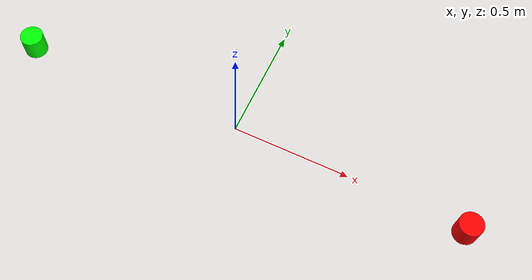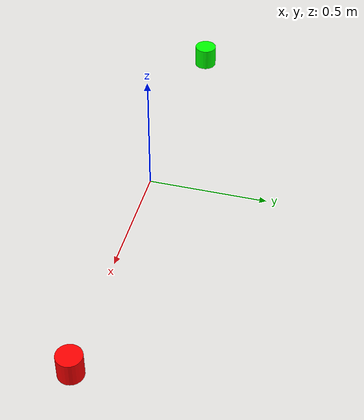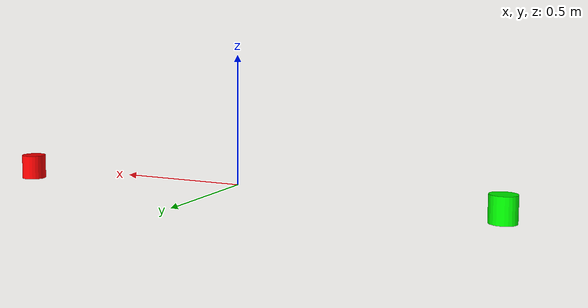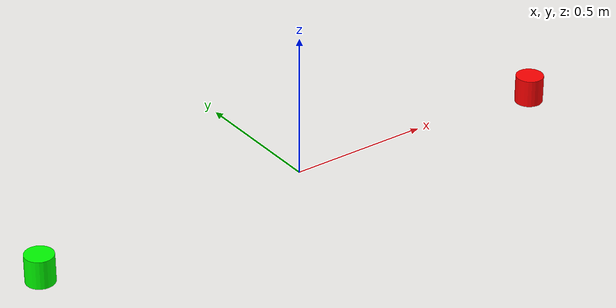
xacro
<?xml version="1.0"?>
<robot name="simple_lidar_on_platform" xmlns:xacro="http://wiki.ros.org/xacro">
  <material name="red"><color rgba="1 0 0 1"/></material>
  <material name="green"><color rgba="0 1 0 1"/></material>
  <!-- 引入您的6DOF平台宏 -->
  <xacro:include filename="$(find virtual_6dof)/urdf/virtual_6dof.xacro" />

  <!-- 【关键修复】定义虚拟的 world 链接以满足 URDF 解析器 -->
  <link name="world"/>

  <!-- 定义一个非常简单的雷达连杆（作为末端执行器） -->
  <link name="simple_link1">
    <visual>
      <!-- 改为 URDF 支持的圆柱体 -->
      <geometry><cylinder length="0.1" radius="0.05"/></geometry>
      <material name="red"/>
    </visual>
    <!-- 碰撞体可以很小，但不能为零 -->
    <collision><geometry><sphere radius="0.02"/></geometry></collision>
    <inertial>
      <mass value="0.1"/>
      <inertia ixx="1e-5" ixy="0" ixz="0" iyy="1e-5" iyz="0" izz="1e-5"/>
    </inertial>
  </link>
  <link name="simple_link2">
    <visual>
      <!-- 改为 URDF 支持的圆柱体 -->
      <geometry><cylinder length="0.1" radius="0.05"/></geometry>
      <material name="green"/>
    </visual>
    <!-- 碰撞体可以很小，但不能为零 -->
    <collision><geometry><sphere radius="0.02"/></geometry></collision>
    <inertial>
      <mass value="0.1"/>
      <inertia ixx="1e-5" ixy="0" ixz="0" iyy="1e-5" iyz="0" izz="1e-5"/>
    </inertial>
  </link>

  <!-- ===================== 安装6DOF运动平台 ===================== -->
  <!-- 直接将平台安装在“world”上，末端连接我们定义的简单雷达 -->
  <xacro:virtual_6dof prefix="p1" parent_link="world" end_link="simple_link1">
    <origin xyz="0 0 0" rpy="0 0 0"/>
    <origin xyz="1 0 0" rpy="0 0 0"/>
  </xacro:virtual_6dof>
  <xacro:virtual_6dof prefix="p2" parent_link="world" end_link="simple_link2">
    <origin xyz="0 0 0" rpy="0 0 0"/>
    <origin xyz="-1 0 0" rpy="0 0 0"/>
  </xacro:virtual_6dof>

  <!-- 整个 URDF 共享一个 gazebo_ros_control 插件 -->
  <gazebo>
    <plugin name="virtual_6dof_gazebo_ros_control"
            filename="libgazebo_ros_control.so">
    </plugin>
  </gazebo>
</robot>

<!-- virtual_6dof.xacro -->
<robot name="virtual_6dof" xmlns:xacro="http://wiki.ros.org/xacro">

  <xacro:macro name="virtual_6dof"
    params="parent_link end_link prefix
            *origin_offset *end_effector_offset">

    <!-- 平台基座连杆 -->
    <link name="${prefix}_virtual_6dof_base_link">
      <inertial>
        <mass value="0.5"/>
        <inertia ixx="0.001" ixy="0.0" ixz="0.0"
                 iyy="0.001" iyz="0.0" izz="0.001"/>
      </inertial>
      <visual>
        <geometry><box size="0 0 0"/></geometry>
        <material name="${prefix}_dark_gray"><color rgba="0.3 0.3 0.3 1"/></material>
      </visual>
      <collision><geometry><box size="0 0 0"/></geometry></collision>
    </link>

    <joint name="${prefix}_virtual_6dof_base_joint" type="fixed">
      <parent link="${parent_link}"/>
      <child  link="${prefix}_virtual_6dof_base_link"/>
      <xacro:insert_block name="origin_offset"/>
    </joint>

    <!-- ===== 6 自由度关节链（所有名字都加 ${prefix}_ 前缀） ===== -->
    <joint name="${prefix}_virtual_6dof_x_trans_joint" type="prismatic">
      <parent link="${prefix}_virtual_6dof_base_link"/>
      <child  link="${prefix}_virtual_6dof_x_trans_link"/>
      <origin xyz="0 0 0" rpy="0 0 0"/>
      <axis  xyz="1 0 0"/>
      <limit lower="-50.0" upper="50.0" effort="100" velocity="0.5"/>
      <dynamics damping="15.0" friction="1.0"/>
    </joint>
    <link name="${prefix}_virtual_6dof_x_trans_link">
      <visual>
        <geometry><box size="0 0 0"/></geometry>
        <material name="${prefix}_x_axis"><color rgba="1 0.2 0.2 1"/></material>
      </visual>
      <collision><geometry><box size="0 0 0"/></geometry></collision>
      <inertial>
        <mass value="0.3"/>
        <inertia ixx="0.0005" ixy="0" ixz="0" iyy="0.0005" iyz="0" izz="0.0005"/>
      </inertial>
    </link>

    <joint name="${prefix}_virtual_6dof_y_trans_joint" type="prismatic">
      <parent link="${prefix}_virtual_6dof_x_trans_link"/>
      <child  link="${prefix}_virtual_6dof_y_trans_link"/>
      <origin xyz="0 0 0" rpy="0 0 0"/>
      <axis  xyz="0 1 0"/>
      <limit lower="-50.0" upper="50.0" effort="100" velocity="0.5"/>
      <dynamics damping="15.0" friction="1.0"/>
    </joint>
    <link name="${prefix}_virtual_6dof_y_trans_link">
      <visual>
        <geometry><box size="0 0 0"/></geometry>
        <material name="${prefix}_y_axis"><color rgba="0.2 1 0.2 1"/></material>
      </visual>
      <collision><geometry><box size="0 0 0"/></geometry></collision>
      <inertial>
        <mass value="0.3"/>
        <inertia ixx="0.0005" ixy="0" ixz="0" iyy="0.0005" iyz="0" izz="0.0005"/>
      </inertial>
    </link>

    <joint name="${prefix}_virtual_6dof_z_trans_joint" type="prismatic">
      <parent link="${prefix}_virtual_6dof_y_trans_link"/>
      <child  link="${prefix}_virtual_6dof_z_trans_link"/>
      <origin xyz="0 0 0" rpy="0 0 0"/>
      <axis  xyz="0 0 1"/>
      <limit lower="-50.0" upper="50.0" effort="100" velocity="0.5"/>
      <dynamics damping="15.0" friction="1.0"/>
    </joint>
    <link name="${prefix}_virtual_6dof_z_trans_link">
      <visual>
        <geometry><box size="0 0 0"/></geometry>
        <material name="${prefix}_z_axis"><color rgba="0.2 0.2 1 1"/></material>
      </visual>
      <collision><geometry><box size="0 0 0"/></geometry></collision>
      <inertial>
        <mass value="0.3"/>
        <inertia ixx="0.0005" ixy="0" ixz="0" iyy="0.0005" iyz="0" izz="0.0005"/>
      </inertial>
    </link>

    <joint name="${prefix}_virtual_6dof_roll_joint" type="revolute">
      <parent link="${prefix}_virtual_6dof_z_trans_link"/>
      <child  link="${prefix}_virtual_6dof_roll_link"/>
      <origin xyz="0 0 0" rpy="0 0 0"/>
      <axis  xyz="1 0 0"/>
      <limit lower="-3.14" upper="3.14" effort="30" velocity="2.0"/>
      <dynamics damping="15.0" friction="1.0"/>
    </joint>
    <link name="${prefix}_virtual_6dof_roll_link">
      <visual>
        <geometry><box size="0 0 0"/></geometry>
        <material name="${prefix}_roll"><color rgba="1 0.5 0 1"/></material>
      </visual>
      <collision><geometry><box size="0 0 0"/></geometry></collision>
      <inertial>
        <mass value="0.001"/>
        <inertia ixx="0.0002" ixy="0" ixz="0" iyy="0.0002" iyz="0" izz="0.0002"/>
      </inertial>
    </link>

    <joint name="${prefix}_virtual_6dof_pitch_joint" type="revolute">
      <parent link="${prefix}_virtual_6dof_roll_link"/>
      <child  link="${prefix}_virtual_6dof_pitch_link"/>
      <origin xyz="0 0 0" rpy="0 0 0"/>
      <axis  xyz="0 1 0"/>
      <limit lower="-1.57" upper="1.57" effort="30" velocity="2.0"/>
      <dynamics damping="8.0" friction="0.3"/>
    </joint>
    <link name="${prefix}_virtual_6dof_pitch_link">
      <visual>
        <geometry><box size="0 0 0"/></geometry>
        <material name="${prefix}_pitch"><color rgba="1 0.5 0 1"/></material>
      </visual>
      <collision><geometry><box size="0 0 0"/></geometry></collision>
      <inertial>
        <mass value="0.001"/>
        <inertia ixx="0.0002" ixy="0" ixz="0" iyy="0.0002" iyz="0" izz="0.0002"/>
      </inertial>
    </link>

    <joint name="${prefix}_virtual_6dof_yaw_joint" type="revolute">
      <parent link="${prefix}_virtual_6dof_pitch_link"/>
      <child  link="${prefix}_virtual_6dof_yaw_link"/>
      <origin xyz="0 0 0" rpy="0 0 0"/>
      <axis  xyz="0 0 1"/>
      <limit lower="-3.14" upper="3.14" effort="30" velocity="2.0"/>
      <dynamics damping="8.0" friction="0.3"/>
    </joint>
    <link name="${prefix}_virtual_6dof_yaw_link">
      <visual>
        <geometry><box size="0 0 0"/></geometry>
        <material name="${prefix}_yaw"><color rgba="1 0.5 0 1"/></material>
      </visual>
      <collision><geometry><box size="0 0 0"/></geometry></collision>
      <inertial>
        <mass value="0.001"/>
        <inertia ixx="0.0002" ixy="0" ixz="0" iyy="0.0002" iyz="0" izz="0.0002"/>
      </inertial>
    </link>

    <joint name="${prefix}_virtual_6dof_end_effector_joint" type="fixed">
      <parent link="${prefix}_virtual_6dof_yaw_link"/>
      <child  link="${end_link}"/>
      <xacro:insert_block name="end_effector_offset"/>
    </joint>

    <!-- ===== 传动装置（名字也要加前缀） ===== -->
    <transmission name="${prefix}_virtual_6dof_x_trans_joint_trans">
      <type>transmission_interface/SimpleTransmission</type>
      <joint name="${prefix}_virtual_6dof_x_trans_joint">
        <hardwareInterface>hardware_interface/PositionJointInterface</hardwareInterface>
      </joint>
      <actuator name="${prefix}_virtual_6dof_x_trans_joint_motor">
        <mechanicalReduction>1</mechanicalReduction>
      </actuator>
    </transmission>
    <transmission name="${prefix}_virtual_6dof_y_trans_joint_trans">
      <type>transmission_interface/SimpleTransmission</type>
      <joint name="${prefix}_virtual_6dof_y_trans_joint">
        <hardwareInterface>hardware_interface/PositionJointInterface</hardwareInterface>
      </joint>
      <actuator name="${prefix}_virtual_6dof_y_trans_joint_motor">
        <mechanicalReduction>1</mechanicalReduction>
      </actuator>
    </transmission>
    <transmission name="${prefix}_virtual_6dof_z_trans_joint_trans">
      <type>transmission_interface/SimpleTransmission</type>
      <joint name="${prefix}_virtual_6dof_z_trans_joint">
        <hardwareInterface>hardware_interface/PositionJointInterface</hardwareInterface>
      </joint>
      <actuator name="${prefix}_virtual_6dof_z_trans_joint_motor">
        <mechanicalReduction>1</mechanicalReduction>
      </actuator>
    </transmission>
    <transmission name="${prefix}_virtual_6dof_roll_joint_trans">
      <type>transmission_interface/SimpleTransmission</type>
      <joint name="${prefix}_virtual_6dof_roll_joint">
        <hardwareInterface>hardware_interface/PositionJointInterface</hardwareInterface>
      </joint>
      <actuator name="${prefix}_virtual_6dof_roll_joint_motor">
        <mechanicalReduction>1</mechanicalReduction>
      </actuator>
    </transmission>
    <transmission name="${prefix}_virtual_6dof_pitch_joint_trans">
      <type>transmission_interface/SimpleTransmission</type>
      <joint name="${prefix}_virtual_6dof_pitch_joint">
        <hardwareInterface>hardware_interface/PositionJointInterface</hardwareInterface>
      </joint>
      <actuator name="${prefix}_virtual_6dof_pitch_joint_motor">
        <mechanicalReduction>1</mechanicalReduction>
      </actuator>
    </transmission>
    <transmission name="${prefix}_virtual_6dof_yaw_joint_trans">
      <type>transmission_interface/SimpleTransmission</type>
      <joint name="${prefix}_virtual_6dof_yaw_joint">
        <hardwareInterface>hardware_interface/PositionJointInterface</hardwareInterface>
      </joint>
      <actuator name="${prefix}_virtual_6dof_yaw_joint_motor">
        <mechanicalReduction>1</mechanicalReduction>
      </actuator>
    </transmission>

  </xacro:macro>
</robot>
